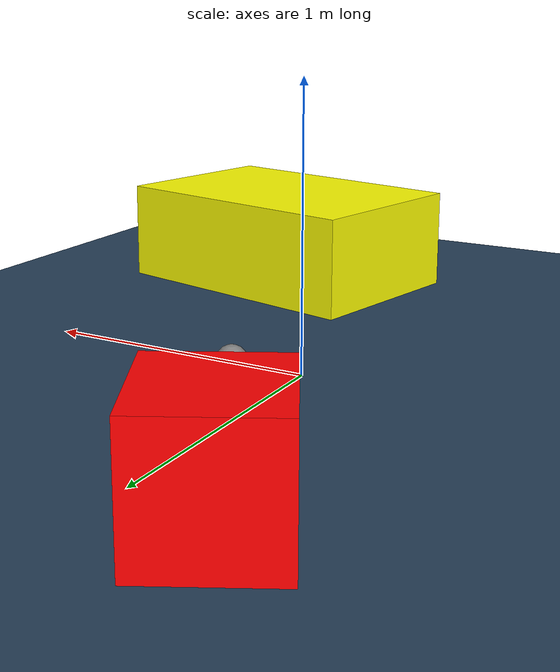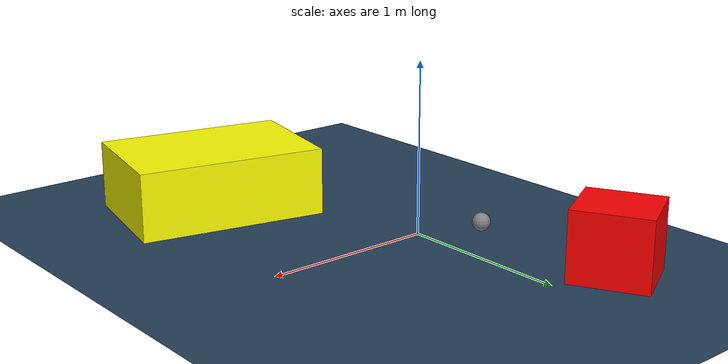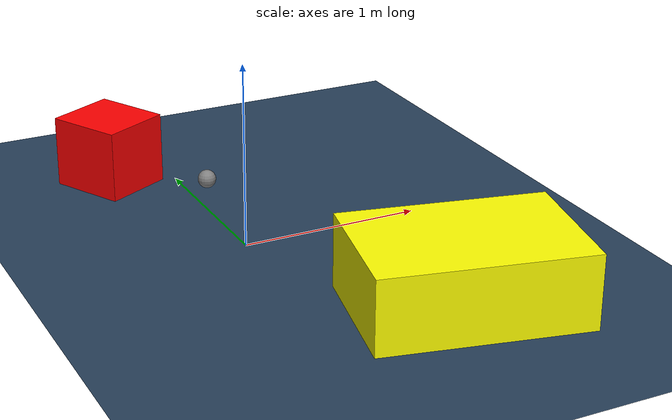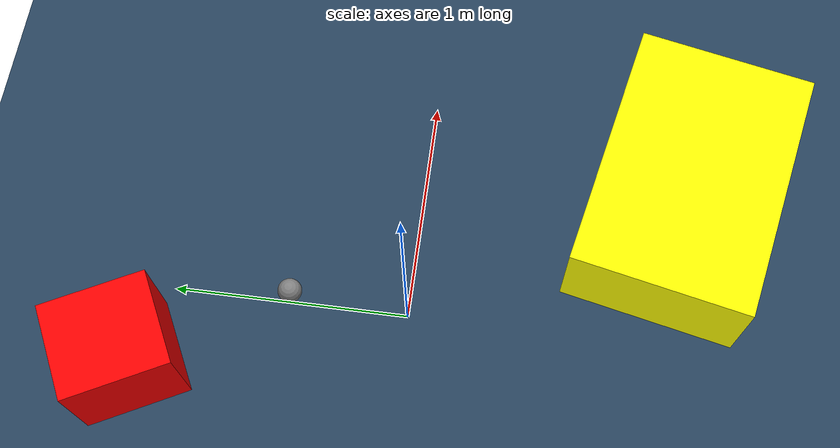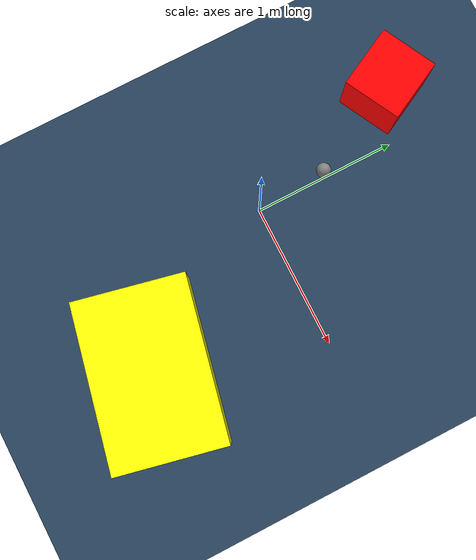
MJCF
<?xml version="1.0" ?>
<mujoco model="generated_environment">
  <option timestep="0.01" integrator="RK4" cone="elliptic"/>
  <default>
    <geom density="1"/>
  </default>
  <asset>
    <texture builtin="gradient" height="3072" rgb1="0.3 0.5 0.7" rgb2="0 0 0" type="skybox" width="512"/>
    <texture builtin="checker" height="300" mark="edge" markrgb="0.8 0.8 0.8" name="groundplane" rgb1="0.2 0.3 0.4" rgb2="0.1 0.2 0.3" type="2d" width="300"/>
    <material name="groundplane" reflectance="0.2" texrepeat="5 5" texture="groundplane" texuniform="true"/>
    <material name="robot" rgba="0.0 1.0 0.0 1"/>
  </asset>
  <worldbody>
    <light dir="0 0 -1" directional="true" pos="0 0 1.5"/>
    <geom condim="4" friction="1.0 0.005 0.001" material="groundplane" name="floor" size="0 0 0.05" type="plane"/>
    <body name="walls"/>
    <body name="robot">
      <joint name="joint_x" type="slide" pos="0 0 0" axis="1 0 0"/>
      <joint name="joint_y" type="slide" pos="0 0 0" axis="0 1 0"/>
      <geom name="robot" type="sphere" pos="-0.014507065948110132 0.48099074604042924 0.2" size="0.05" mass="5." friction="1.0 0.005 0.0001" condim="4"/>
      <site name="sensor_ball"/>
    </body>
    <body name="obstacle_1_movable">
      <geom name="obstacle_1_movable" condim="4" pos="0.654656987376844 -1.1112196230268694 0.2" euler="0 0 77.73387557372193" friction="1.0 0.005 0.001" rgba="1 1 0 1" size="0.37387981135821813 0.5526923673403197 0.2" type="box" mass="0.1"/>
      <joint type="free"/>
    </body>
    <body name="obstacle_2_static">
      <geom name="obstacle_2_static" condim="4" pos="-0.34774445959564404 1.1284918020516195 0.2" euler="0 0 297.3697476905987" friction="1.0 0.005 0.001" rgba="1 0 0 1" size="0.21798567348518955 0.20151487830108003 0.2" type="box"/>
    </body>
  </worldbody>
  <actuator>
    <motor name="actuator_x" joint="joint_x" gear="1" ctrlrange="-1 1"/>
    <motor name="actuator_y" joint="joint_y" gear="1" ctrlrange="-1 1"/>
  </actuator>
</mujoco>
